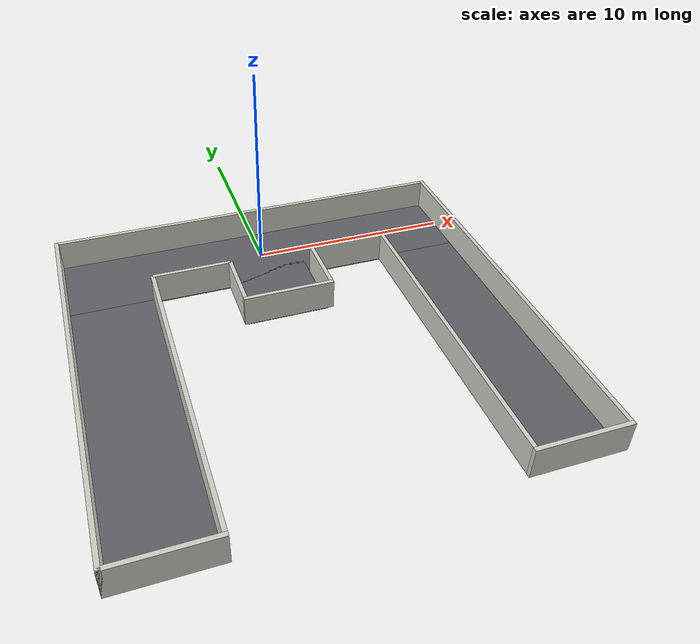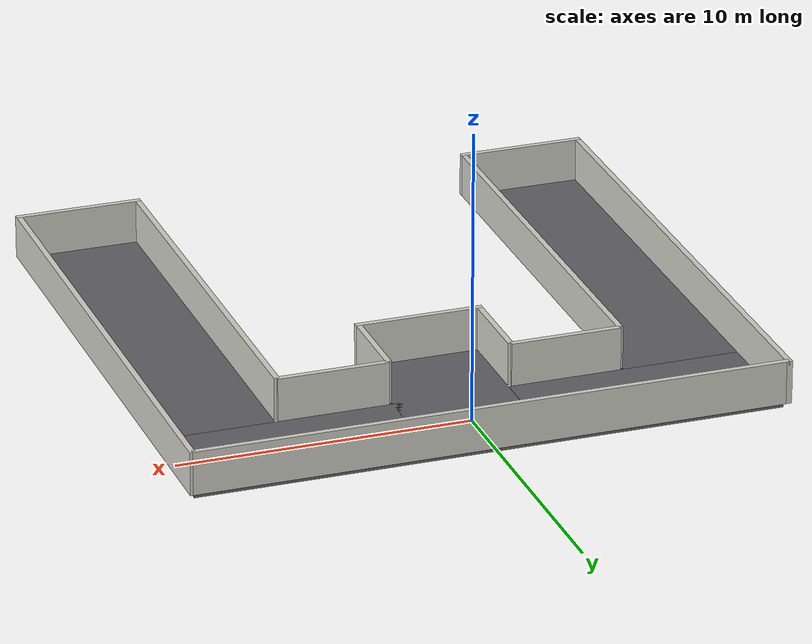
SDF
<?xml version="1.0" ?>
<sdf version="1.9">
  <world name="long_t_intersection">
    <physics name="1ms" type="ode">
      <max_step_size>0.001</max_step_size>
      <real_time_factor>1.0</real_time_factor>
    </physics>

    <plugin filename="gz-sim-physics-system" name="gz::sim::systems::Physics"/>
    <plugin filename="gz-sim-sensors-system" name="gz::sim::systems::Sensors">
      <render_engine>ogre2</render_engine>
    </plugin>
    <plugin filename="gz-sim-imu-system" name="gz::sim::systems::Imu"/>
    <plugin filename="gz-sim-contact-system" name="gz::sim::systems::Contact"/>
    <plugin filename="gz-sim-user-commands-system" name="gz::sim::systems::UserCommands"/>
    <plugin filename="gz-sim-scene-broadcaster-system" name="gz::sim::systems::SceneBroadcaster"/>

    <scene>
      <ambient>0.75 0.75 0.75 1</ambient>
      <background>0.72 0.80 0.90 1</background>
      <shadows>false</shadows>
    </scene>

    <light name="sun" type="directional">
      <cast_shadows>true</cast_shadows>
      <pose>0 0 20 0 0 0</pose>
      <diffuse>0.9 0.9 0.9 1</diffuse>
      <specular>0.2 0.2 0.2 1</specular>
      <direction>-0.5 0.2 -1</direction>
    </light>

    <!-- Point lights keep the corridor visible even on renderers that do not
         apply the directional light or material ambient term consistently. -->
    <light name="stem_light_1" type="point">
      <pose>0 -4.5 4 0 0 0</pose>
      <cast_shadows>false</cast_shadows>
      <diffuse>1 0.98 0.92 1</diffuse>
      <specular>0.2 0.2 0.2 1</specular>
      <attenuation><range>14</range><constant>0.4</constant><linear>0.02</linear><quadratic>0.002</quadratic></attenuation>
    </light>
    <light name="stem_light_2" type="point">
      <pose>0 -4 4 0 0 0</pose>
      <cast_shadows>false</cast_shadows>
      <diffuse>1 0.98 0.92 1</diffuse>
      <specular>0.2 0.2 0.2 1</specular>
      <attenuation><range>14</range><constant>0.4</constant><linear>0.02</linear><quadratic>0.002</quadratic></attenuation>
    </light>
    <light name="cross_light_left" type="point">
      <pose>-6 0 4 0 0 0</pose>
      <cast_shadows>false</cast_shadows>
      <diffuse>1 0.98 0.92 1</diffuse>
      <specular>0.2 0.2 0.2 1</specular>
      <attenuation><range>16</range><constant>0.4</constant><linear>0.02</linear><quadratic>0.002</quadratic></attenuation>
    </light>
    <light name="cross_light_right" type="point">
      <pose>6 0 4 0 0 0</pose>
      <cast_shadows>false</cast_shadows>
      <diffuse>1 0.98 0.92 1</diffuse>
      <specular>0.2 0.2 0.2 1</specular>
      <attenuation><range>16</range><constant>0.4</constant><linear>0.02</linear><quadratic>0.002</quadratic></attenuation>
    </light>
    <light name="left_trap_light" type="point">
      <pose>-8 -11 4 0 0 0</pose>
      <cast_shadows>false</cast_shadows>
      <diffuse>1 0.98 0.92 1</diffuse>
      <specular>0.2 0.2 0.2 1</specular>
      <attenuation><range>18</range><constant>0.4</constant><linear>0.02</linear><quadratic>0.002</quadratic></attenuation>
    </light>
    <light name="right_trap_light" type="point">
      <pose>8 -11 4 0 0 0</pose>
      <cast_shadows>false</cast_shadows>
      <diffuse>1 0.98 0.92 1</diffuse>
      <specular>0.2 0.2 0.2 1</specular>
      <attenuation><range>18</range><constant>0.4</constant><linear>0.02</linear><quadratic>0.002</quadratic></attenuation>
    </light>

    <!-- T-shaped floor: a 5 m stem and a 20 m cross corridor, both 4 m wide,
         with a 15 m dead-end trap turning down at each end. -->
    <model name="t_intersection">
      <static>true</static>

      <link name="floor">
        <collision name="stem_collision">
          <pose>0 -2.5 -0.10 0 0 0</pose>
          <geometry><box><size>4 5 0.20</size></box></geometry>
        </collision>
        <visual name="stem_visual">
          <pose>0 -2.5 -0.10 0 0 0</pose>
          <geometry><box><size>4 5 0.20</size></box></geometry>
          <material><ambient>0.32 0.32 0.34 1</ambient><diffuse>0.38 0.38 0.40 1</diffuse></material>
        </visual>
        <collision name="cross_collision">
          <pose>0 0 -0.10 0 0 0</pose>
          <geometry><box><size>20 4 0.20</size></box></geometry>
        </collision>
        <visual name="cross_visual">
          <pose>0 0 -0.10 0 0 0</pose>
          <geometry><box><size>20 4 0.20</size></box></geometry>
          <material><ambient>0.32 0.32 0.34 1</ambient><diffuse>0.38 0.38 0.40 1</diffuse></material>
        </visual>
        <collision name="left_trap_floor_collision">
          <pose>-8 -9.5 -0.10 0 0 0</pose>
          <geometry><box><size>4 15 0.20</size></box></geometry>
        </collision>
        <visual name="left_trap_floor_visual">
          <pose>-8 -9.5 -0.10 0 0 0</pose>
          <geometry><box><size>4 15 0.20</size></box></geometry>
          <material><ambient>0.32 0.32 0.34 1</ambient><diffuse>0.38 0.38 0.40 1</diffuse></material>
        </visual>
        <collision name="right_trap_floor_collision">
          <pose>8 -9.5 -0.10 0 0 0</pose>
          <geometry><box><size>4 15 0.20</size></box></geometry>
        </collision>
        <visual name="right_trap_floor_visual">
          <pose>8 -9.5 -0.10 0 0 0</pose>
          <geometry><box><size>4 15 0.20</size></box></geometry>
          <material><ambient>0.32 0.32 0.34 1</ambient><diffuse>0.38 0.38 0.40 1</diffuse></material>
        </visual>
      </link>

      <!-- Each wall is 20 cm thick and 1.5 m tall, suitable for 2D lidar. -->
      <link name="walls">
        <collision name="stem_left_collision"><pose>-2.1 -3.55 0.75 0 0 0</pose><geometry><box><size>0.2 2.9 1.5</size></box></geometry></collision>
        <visual name="stem_left_visual"><pose>-2.1 -3.55 0.75 0 0 0</pose><geometry><box><size>0.2 2.9 1.5</size></box></geometry><material><diffuse>0.82 0.82 0.78 1</diffuse></material></visual>

        <collision name="stem_right_collision"><pose>2.1 -3.55 0.75 0 0 0</pose><geometry><box><size>0.2 2.9 1.5</size></box></geometry></collision>
        <visual name="stem_right_visual"><pose>2.1 -3.55 0.75 0 0 0</pose><geometry><box><size>0.2 2.9 1.5</size></box></geometry><material><diffuse>0.82 0.82 0.78 1</diffuse></material></visual>

        <collision name="stem_end_collision"><pose>0 -5.1 0.75 0 0 0</pose><geometry><box><size>4.4 0.2 1.5</size></box></geometry></collision>
        <visual name="stem_end_visual"><pose>0 -5.1 0.75 0 0 0</pose><geometry><box><size>4.4 0.2 1.5</size></box></geometry><material><diffuse>0.82 0.82 0.78 1</diffuse></material></visual>

        <collision name="cross_top_collision"><pose>0 2.1 0.75 0 0 0</pose><geometry><box><size>20.2 0.2 1.5</size></box></geometry></collision>
        <visual name="cross_top_visual"><pose>0 2.1 0.75 0 0 0</pose><geometry><box><size>20.2 0.2 1.5</size></box></geometry><material><diffuse>0.82 0.82 0.78 1</diffuse></material></visual>

        <collision name="cross_bottom_left_collision"><pose>-4 -2.1 0.75 0 0 0</pose><geometry><box><size>3.8 0.2 1.5</size></box></geometry></collision>
        <visual name="cross_bottom_left_visual"><pose>-4 -2.1 0.75 0 0 0</pose><geometry><box><size>3.8 0.2 1.5</size></box></geometry><material><diffuse>0.82 0.82 0.78 1</diffuse></material></visual>

        <collision name="cross_bottom_right_collision"><pose>4 -2.1 0.75 0 0 0</pose><geometry><box><size>3.8 0.2 1.5</size></box></geometry></collision>
        <visual name="cross_bottom_right_visual"><pose>4 -2.1 0.75 0 0 0</pose><geometry><box><size>3.8 0.2 1.5</size></box></geometry><material><diffuse>0.82 0.82 0.78 1</diffuse></material></visual>

        <collision name="left_trap_outer_collision"><pose>-10.1 -7.5 0.75 0 0 0</pose><geometry><box><size>0.2 19.4 1.5</size></box></geometry></collision>
        <visual name="left_trap_outer_visual"><pose>-10.1 -7.5 0.75 0 0 0</pose><geometry><box><size>0.2 19.4 1.5</size></box></geometry><material><diffuse>0.82 0.82 0.78 1</diffuse></material></visual>

        <collision name="left_trap_inner_collision"><pose>-5.9 -9.55 0.75 0 0 0</pose><geometry><box><size>0.2 14.9 1.5</size></box></geometry></collision>
        <visual name="left_trap_inner_visual"><pose>-5.9 -9.55 0.75 0 0 0</pose><geometry><box><size>0.2 14.9 1.5</size></box></geometry><material><diffuse>0.82 0.82 0.78 1</diffuse></material></visual>

        <collision name="left_trap_end_collision"><pose>-8 -17.1 0.75 0 0 0</pose><geometry><box><size>4.4 0.2 1.5</size></box></geometry></collision>
        <visual name="left_trap_end_visual"><pose>-8 -17.1 0.75 0 0 0</pose><geometry><box><size>4.4 0.2 1.5</size></box></geometry><material><diffuse>0.82 0.82 0.78 1</diffuse></material></visual>

        <collision name="right_trap_outer_collision"><pose>10.1 -7.5 0.75 0 0 0</pose><geometry><box><size>0.2 19.4 1.5</size></box></geometry></collision>
        <visual name="right_trap_outer_visual"><pose>10.1 -7.5 0.75 0 0 0</pose><geometry><box><size>0.2 19.4 1.5</size></box></geometry><material><diffuse>0.82 0.82 0.78 1</diffuse></material></visual>

        <collision name="right_trap_inner_collision"><pose>5.9 -9.55 0.75 0 0 0</pose><geometry><box><size>0.2 14.9 1.5</size></box></geometry></collision>
        <visual name="right_trap_inner_visual"><pose>5.9 -9.55 0.75 0 0 0</pose><geometry><box><size>0.2 14.9 1.5</size></box></geometry><material><diffuse>0.82 0.82 0.78 1</diffuse></material></visual>

        <collision name="right_trap_end_collision"><pose>8 -17.1 0.75 0 0 0</pose><geometry><box><size>4.4 0.2 1.5</size></box></geometry></collision>
        <visual name="right_trap_end_visual"><pose>8 -17.1 0.75 0 0 0</pose><geometry><box><size>4.4 0.2 1.5</size></box></geometry><material><diffuse>0.82 0.82 0.78 1</diffuse></material></visual>
      </link>
    </model>

  </world>
</sdf>
